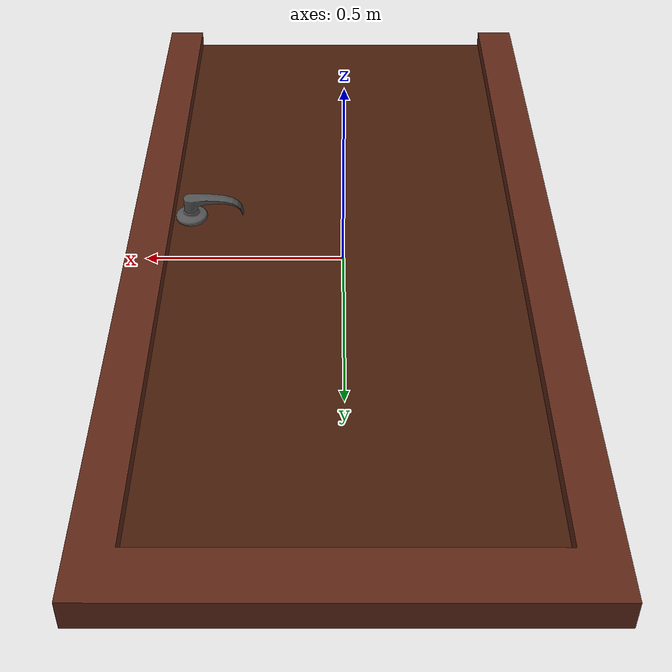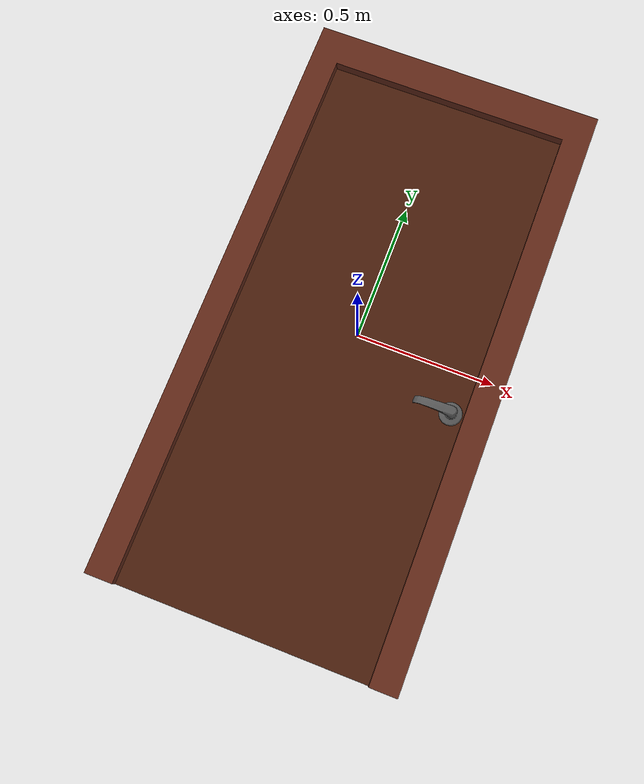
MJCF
<mujoco model="Doorway_1">
  <compiler angle="radian" />

  <default>
    <default class="/">
      <default class="__VISUAL_MJT__">
        <geom contype="0" conaffinity="0" />
      </default>
      <default class="__STRUCTURAL_MJT__">
        <geom contype="8" conaffinity="15" group="4" friction="0.9 0.9 0.001" solref="0.025" solimp="0.998 0.998" />
      </default>
      <default class="__DYNAMIC_MJT__">
        <geom conaffinity="15" group="4" friction="0.9 0.9 0.001" solref="0.025" solimp="0.998 0.998" />
      </default>
    </default>
  </default>

  <asset>
    <texture type="2d" name="TexturesCom_WoodFine0050_1_seamless_S_rich" file="TexturesCom_WoodFine0050_1_seamless_S.png" />
    <texture type="2d" name="MediumWoodSmooth" file="WoodGrains1.png" />
    <material name="material_TexturesCom_WoodFine0050_1_seamless_S_rich" class="/" texture="TexturesCom_WoodFine0050_1_seamless_S_rich" rgba="0.529412 0.307526 0.307526 1" />
    <material name="material_BlackSmoothMeta" class="/" rgba="0.323529 0.323529 0.323529 1" />
    <material name="material_MediumWoodSmooth" class="/" texture="MediumWoodSmooth" rgba="0.396226 0.230368 0.151388 1" />
    <mesh name="Doorway_1_doorway_1" class="/" content_type="model/obj" file="Doorway_1_doorway_1/Doorway_1_doorway_1.obj" />
    <mesh name="Doorway_1_doorway_door_1_0" class="/" content_type="model/obj" file="Doorway_1_doorway_door_1/Doorway_1_doorway_door_1_0.obj" />
    <mesh name="Doorway_1_doorway_door_1_1" class="/" content_type="model/obj" file="Doorway_1_doorway_door_1/Doorway_1_doorway_door_1_1.obj" />
    <mesh name="Doorway_1_doorway_handle_1" class="/" content_type="model/obj" file="Doorway_1_doorway_handle_1/Doorway_1_doorway_handle_1.obj" />
    <mesh name="Doorway_1_doorway_1_collision_1" content_type="model/obj" file="Doorway_1_doorway_1/Doorway_1_doorway_1/Doorway_1_doorway_1_collision_1.obj" />
    <mesh name="Doorway_1_doorway_1_collision_0" content_type="model/obj" file="Doorway_1_doorway_1/Doorway_1_doorway_1/Doorway_1_doorway_1_collision_0.obj" />
    <mesh name="Doorway_1_doorway_1_collision_2" content_type="model/obj" file="Doorway_1_doorway_1/Doorway_1_doorway_1/Doorway_1_doorway_1_collision_2.obj" />
    <mesh name="Doorway_1_doorway_door_1_0_collision_2" content_type="model/obj" file="Doorway_1_doorway_door_1/Doorway_1_doorway_door_1_0/Doorway_1_doorway_door_1_0_collision_2.obj" />
    <mesh name="Doorway_1_doorway_door_1_0_collision_11" content_type="model/obj" file="Doorway_1_doorway_door_1/Doorway_1_doorway_door_1_0/Doorway_1_doorway_door_1_0_collision_11.obj" />
    <mesh name="Doorway_1_doorway_door_1_0_collision_12" content_type="model/obj" file="Doorway_1_doorway_door_1/Doorway_1_doorway_door_1_0/Doorway_1_doorway_door_1_0_collision_12.obj" />
    <mesh name="Doorway_1_doorway_door_1_0_collision_18" content_type="model/obj" file="Doorway_1_doorway_door_1/Doorway_1_doorway_door_1_0/Doorway_1_doorway_door_1_0_collision_18.obj" />
    <mesh name="Doorway_1_doorway_door_1_0_collision_20" content_type="model/obj" file="Doorway_1_doorway_door_1/Doorway_1_doorway_door_1_0/Doorway_1_doorway_door_1_0_collision_20.obj" />
    <mesh name="Doorway_1_doorway_door_1_0_collision_14" content_type="model/obj" file="Doorway_1_doorway_door_1/Doorway_1_doorway_door_1_0/Doorway_1_doorway_door_1_0_collision_14.obj" />
    <mesh name="Doorway_1_doorway_door_1_0_collision_8" content_type="model/obj" file="Doorway_1_doorway_door_1/Doorway_1_doorway_door_1_0/Doorway_1_doorway_door_1_0_collision_8.obj" />
    <mesh name="Doorway_1_doorway_door_1_0_collision_16" content_type="model/obj" file="Doorway_1_doorway_door_1/Doorway_1_doorway_door_1_0/Doorway_1_doorway_door_1_0_collision_16.obj" />
    <mesh name="Doorway_1_doorway_door_1_0_collision_5" content_type="model/obj" file="Doorway_1_doorway_door_1/Doorway_1_doorway_door_1_0/Doorway_1_doorway_door_1_0_collision_5.obj" />
    <mesh name="Doorway_1_doorway_door_1_0_collision_9" content_type="model/obj" file="Doorway_1_doorway_door_1/Doorway_1_doorway_door_1_0/Doorway_1_doorway_door_1_0_collision_9.obj" />
    <mesh name="Doorway_1_doorway_door_1_0_collision_10" content_type="model/obj" file="Doorway_1_doorway_door_1/Doorway_1_doorway_door_1_0/Doorway_1_doorway_door_1_0_collision_10.obj" />
    <mesh name="Doorway_1_doorway_door_1_0_collision_15" content_type="model/obj" file="Doorway_1_doorway_door_1/Doorway_1_doorway_door_1_0/Doorway_1_doorway_door_1_0_collision_15.obj" />
    <mesh name="Doorway_1_doorway_door_1_0_collision_23" content_type="model/obj" file="Doorway_1_doorway_door_1/Doorway_1_doorway_door_1_0/Doorway_1_doorway_door_1_0_collision_23.obj" />
    <mesh name="Doorway_1_doorway_door_1_0_collision_17" content_type="model/obj" file="Doorway_1_doorway_door_1/Doorway_1_doorway_door_1_0/Doorway_1_doorway_door_1_0_collision_17.obj" />
    <mesh name="Doorway_1_doorway_door_1_0_collision_22" content_type="model/obj" file="Doorway_1_doorway_door_1/Doorway_1_doorway_door_1_0/Doorway_1_doorway_door_1_0_collision_22.obj" />
    <mesh name="Doorway_1_doorway_door_1_0_collision_19" content_type="model/obj" file="Doorway_1_doorway_door_1/Doorway_1_doorway_door_1_0/Doorway_1_doorway_door_1_0_collision_19.obj" />
    <mesh name="Doorway_1_doorway_door_1_0_collision_21" content_type="model/obj" file="Doorway_1_doorway_door_1/Doorway_1_doorway_door_1_0/Doorway_1_doorway_door_1_0_collision_21.obj" />
    <mesh name="Doorway_1_doorway_door_1_0_collision_6" content_type="model/obj" file="Doorway_1_doorway_door_1/Doorway_1_doorway_door_1_0/Doorway_1_doorway_door_1_0_collision_6.obj" />
    <mesh name="Doorway_1_doorway_door_1_0_collision_0" content_type="model/obj" file="Doorway_1_doorway_door_1/Doorway_1_doorway_door_1_0/Doorway_1_doorway_door_1_0_collision_0.obj" />
    <mesh name="Doorway_1_doorway_door_1_0_collision_3" content_type="model/obj" file="Doorway_1_doorway_door_1/Doorway_1_doorway_door_1_0/Doorway_1_doorway_door_1_0_collision_3.obj" />
    <mesh name="Doorway_1_doorway_door_1_0_collision_4" content_type="model/obj" file="Doorway_1_doorway_door_1/Doorway_1_doorway_door_1_0/Doorway_1_doorway_door_1_0_collision_4.obj" />
    <mesh name="Doorway_1_doorway_door_1_0_collision_24" content_type="model/obj" file="Doorway_1_doorway_door_1/Doorway_1_doorway_door_1_0/Doorway_1_doorway_door_1_0_collision_24.obj" />
    <mesh name="Doorway_1_doorway_door_1_0_collision_1" content_type="model/obj" file="Doorway_1_doorway_door_1/Doorway_1_doorway_door_1_0/Doorway_1_doorway_door_1_0_collision_1.obj" />
    <mesh name="Doorway_1_doorway_door_1_0_collision_7" content_type="model/obj" file="Doorway_1_doorway_door_1/Doorway_1_doorway_door_1_0/Doorway_1_doorway_door_1_0_collision_7.obj" />
    <mesh name="Doorway_1_doorway_door_1_0_collision_13" content_type="model/obj" file="Doorway_1_doorway_door_1/Doorway_1_doorway_door_1_0/Doorway_1_doorway_door_1_0_collision_13.obj" />
    <mesh name="Doorway_1_doorway_door_1_1_collision_0" content_type="model/obj" file="Doorway_1_doorway_door_1/Doorway_1_doorway_door_1_1/Doorway_1_doorway_door_1_1_collision_0.obj" />
    <mesh name="Doorway_1_doorway_handle_1_collision_7" content_type="model/obj" file="Doorway_1_doorway_handle_1/Doorway_1_doorway_handle_1/Doorway_1_doorway_handle_1_collision_7.obj" />
    <mesh name="Doorway_1_doorway_handle_1_collision_4" content_type="model/obj" file="Doorway_1_doorway_handle_1/Doorway_1_doorway_handle_1/Doorway_1_doorway_handle_1_collision_4.obj" />
    <mesh name="Doorway_1_doorway_handle_1_collision_3" content_type="model/obj" file="Doorway_1_doorway_handle_1/Doorway_1_doorway_handle_1/Doorway_1_doorway_handle_1_collision_3.obj" />
    <mesh name="Doorway_1_doorway_handle_1_collision_0" content_type="model/obj" file="Doorway_1_doorway_handle_1/Doorway_1_doorway_handle_1/Doorway_1_doorway_handle_1_collision_0.obj" />
    <mesh name="Doorway_1_doorway_handle_1_collision_6" content_type="model/obj" file="Doorway_1_doorway_handle_1/Doorway_1_doorway_handle_1/Doorway_1_doorway_handle_1_collision_6.obj" />
    <mesh name="Doorway_1_doorway_handle_1_collision_8" content_type="model/obj" file="Doorway_1_doorway_handle_1/Doorway_1_doorway_handle_1/Doorway_1_doorway_handle_1_collision_8.obj" />
    <mesh name="Doorway_1_doorway_handle_1_collision_10" content_type="model/obj" file="Doorway_1_doorway_handle_1/Doorway_1_doorway_handle_1/Doorway_1_doorway_handle_1_collision_10.obj" />
    <mesh name="Doorway_1_doorway_handle_1_collision_5" content_type="model/obj" file="Doorway_1_doorway_handle_1/Doorway_1_doorway_handle_1/Doorway_1_doorway_handle_1_collision_5.obj" />
    <mesh name="Doorway_1_doorway_handle_1_collision_2" content_type="model/obj" file="Doorway_1_doorway_handle_1/Doorway_1_doorway_handle_1/Doorway_1_doorway_handle_1_collision_2.obj" />
    <mesh name="Doorway_1_doorway_handle_1_collision_11" content_type="model/obj" file="Doorway_1_doorway_handle_1/Doorway_1_doorway_handle_1/Doorway_1_doorway_handle_1_collision_11.obj" />
    <mesh name="Doorway_1_doorway_handle_1_collision_1" content_type="model/obj" file="Doorway_1_doorway_handle_1/Doorway_1_doorway_handle_1/Doorway_1_doorway_handle_1_collision_1.obj" />
    <mesh name="Doorway_1_doorway_handle_1_collision_9" content_type="model/obj" file="Doorway_1_doorway_handle_1/Doorway_1_doorway_handle_1/Doorway_1_doorway_handle_1_collision_9.obj" />
  </asset>

  <worldbody>
    <body name="Doorway_1">
      <body name="Doorway_1_doorway_1" pos="0 -1.06572 0.00102" quat="0 0 -1 0">
        <geom name="Doorway_1_doorway_1" class="__VISUAL_MJT__" type="mesh" material="material_TexturesCom_WoodFine0050_1_seamless_S_rich" mesh="Doorway_1_doorway_1" />
        <geom name="Doorway_1_doorway_1_Doorway_1_doorway_1_MeshCollider_0" class="__DYNAMIC_MJT__" type="mesh" rgba="0.454347 0.851342 0.394783 1" mesh="Doorway_1_doorway_1_collision_1" />
        <geom name="Doorway_1_doorway_1_Doorway_1_doorway_1_MeshCollider_1" class="__DYNAMIC_MJT__" type="mesh" rgba="0.202084 0.405855 0.333252 1" mesh="Doorway_1_doorway_1_collision_0" />
        <geom name="Doorway_1_doorway_1_Doorway_1_doorway_1_MeshCollider_2" class="__DYNAMIC_MJT__" type="mesh" rgba="0.375331 0.211565 0.730763 1" mesh="Doorway_1_doorway_1_collision_2" />
        <body name="Doorway_1_doorway_door_1" pos="0.457629 1.016 0.00116137">
          <joint name="Doorway_1_doorway_door_1_joint_0" class="/" pos="0 0 0" axis="0 1 0" range="0 1.5708" damping="0.1" frictionloss="0.2" />
          <geom name="Doorway_1_doorway_door_1_0" class="__VISUAL_MJT__" type="mesh" density="400" material="material_BlackSmoothMeta" mesh="Doorway_1_doorway_door_1_0" />
          <geom name="Doorway_1_doorway_door_1_1" class="__VISUAL_MJT__" type="mesh" density="400" material="material_MediumWoodSmooth" mesh="Doorway_1_doorway_door_1_1" />
          <geom name="Doorway_1_doorway_door_1_Doorway_1_doorway_door_1_0_MeshCollider_0" class="__DYNAMIC_MJT__" type="mesh" density="400" rgba="0.648529 0.202294 0.939712 1" mesh="Doorway_1_doorway_door_1_0_collision_2" />
          <geom name="Doorway_1_doorway_door_1_Doorway_1_doorway_door_1_0_MeshCollider_1" class="__DYNAMIC_MJT__" type="mesh" density="400" rgba="0.930126 0.644503 0.0959237 1" mesh="Doorway_1_doorway_door_1_0_collision_11" />
          <geom name="Doorway_1_doorway_door_1_Doorway_1_doorway_door_1_0_MeshCollider_2" class="__DYNAMIC_MJT__" type="mesh" density="400" rgba="0.155206 0.809583 0.387815 1" mesh="Doorway_1_doorway_door_1_0_collision_12" />
          <geom name="Doorway_1_doorway_door_1_Doorway_1_doorway_door_1_0_MeshCollider_3" class="__DYNAMIC_MJT__" type="mesh" density="400" rgba="0.522695 0.00158593 0.142887 1" mesh="Doorway_1_doorway_door_1_0_collision_18" />
          <geom name="Doorway_1_doorway_door_1_Doorway_1_doorway_door_1_0_MeshCollider_4" class="__DYNAMIC_MJT__" type="mesh" density="400" rgba="0.0821487 0.656863 0.208377 1" mesh="Doorway_1_doorway_door_1_0_collision_20" />
          <geom name="Doorway_1_doorway_door_1_Doorway_1_doorway_door_1_0_MeshCollider_5" class="__DYNAMIC_MJT__" type="mesh" density="400" rgba="0.18088 0.144447 0.345986 1" mesh="Doorway_1_doorway_door_1_0_collision_14" />
          <geom name="Doorway_1_doorway_door_1_Doorway_1_doorway_door_1_0_MeshCollider_6" class="__DYNAMIC_MJT__" type="mesh" density="400" rgba="0.414477 0.905256 0.052824 1" mesh="Doorway_1_doorway_door_1_0_collision_8" />
          <geom name="Doorway_1_doorway_door_1_Doorway_1_doorway_door_1_0_MeshCollider_7" class="__DYNAMIC_MJT__" type="mesh" density="400" rgba="0.71759 0.554128 0.706758 1" mesh="Doorway_1_doorway_door_1_0_collision_16" />
          <geom name="Doorway_1_doorway_door_1_Doorway_1_doorway_door_1_0_MeshCollider_8" class="__DYNAMIC_MJT__" type="mesh" density="400" rgba="0.417041 0.930151 0.939391 1" mesh="Doorway_1_doorway_door_1_0_collision_5" />
          <geom name="Doorway_1_doorway_door_1_Doorway_1_doorway_door_1_0_MeshCollider_9" class="__DYNAMIC_MJT__" type="mesh" density="400" rgba="0.0555079 0.0837699 0.834545 1" mesh="Doorway_1_doorway_door_1_0_collision_9" />
          <geom name="Doorway_1_doorway_door_1_Doorway_1_doorway_door_1_0_MeshCollider_10" class="__DYNAMIC_MJT__" type="mesh" density="400" rgba="0.556526 0.658584 0.0593275 1" mesh="Doorway_1_doorway_door_1_0_collision_10" />
          <geom name="Doorway_1_doorway_door_1_Doorway_1_doorway_door_1_0_MeshCollider_11" class="__DYNAMIC_MJT__" type="mesh" density="400" rgba="0.955395 0.137254 0.527344 1" mesh="Doorway_1_doorway_door_1_0_collision_15" />
          <geom name="Doorway_1_doorway_door_1_Doorway_1_doorway_door_1_0_MeshCollider_12" class="__DYNAMIC_MJT__" type="mesh" density="400" rgba="0.630686 0.496505 0.723266 1" mesh="Doorway_1_doorway_door_1_0_collision_23" />
          <geom name="Doorway_1_doorway_door_1_Doorway_1_doorway_door_1_0_MeshCollider_13" class="__DYNAMIC_MJT__" type="mesh" density="400" rgba="0.652747 0.6199 0.0718684 1" mesh="Doorway_1_doorway_door_1_0_collision_17" />
          <geom name="Doorway_1_doorway_door_1_Doorway_1_doorway_door_1_0_MeshCollider_14" class="__DYNAMIC_MJT__" type="mesh" density="400" rgba="0.904269 0.841919 0.235622 1" mesh="Doorway_1_doorway_door_1_0_collision_22" />
          <geom name="Doorway_1_doorway_door_1_Doorway_1_doorway_door_1_0_MeshCollider_15" class="__DYNAMIC_MJT__" type="mesh" density="400" rgba="0.233619 0.80766 0.863779 1" mesh="Doorway_1_doorway_door_1_0_collision_19" />
          <geom name="Doorway_1_doorway_door_1_Doorway_1_doorway_door_1_0_MeshCollider_16" class="__DYNAMIC_MJT__" type="mesh" density="400" rgba="0.756694 0.225269 0.20084 1" mesh="Doorway_1_doorway_door_1_0_collision_21" />
          <geom name="Doorway_1_doorway_door_1_Doorway_1_doorway_door_1_0_MeshCollider_17" class="__DYNAMIC_MJT__" type="mesh" density="400" rgba="0.032232 0.963325 0.127332 1" mesh="Doorway_1_doorway_door_1_0_collision_6" />
          <geom name="Doorway_1_doorway_door_1_Doorway_1_doorway_door_1_0_MeshCollider_18" class="__DYNAMIC_MJT__" type="mesh" density="400" rgba="0.415708 0.803088 0.280024 1" mesh="Doorway_1_doorway_door_1_0_collision_0" />
          <geom name="Doorway_1_doorway_door_1_Doorway_1_doorway_door_1_0_MeshCollider_19" class="__DYNAMIC_MJT__" type="mesh" density="400" rgba="0.679179 0.663109 0.517114 1" mesh="Doorway_1_doorway_door_1_0_collision_3" />
          <geom name="Doorway_1_doorway_door_1_Doorway_1_doorway_door_1_0_MeshCollider_20" class="__DYNAMIC_MJT__" type="mesh" density="400" rgba="0.492665 0.3828 0.14334 1" mesh="Doorway_1_doorway_door_1_0_collision_4" />
          <geom name="Doorway_1_doorway_door_1_Doorway_1_doorway_door_1_0_MeshCollider_21" class="__DYNAMIC_MJT__" type="mesh" density="400" rgba="0.674845 0.437417 0.780639 1" mesh="Doorway_1_doorway_door_1_0_collision_24" />
          <geom name="Doorway_1_doorway_door_1_Doorway_1_doorway_door_1_0_MeshCollider_22" class="__DYNAMIC_MJT__" type="mesh" density="400" rgba="0.585471 0.776597 0.377185 1" mesh="Doorway_1_doorway_door_1_0_collision_1" />
          <geom name="Doorway_1_doorway_door_1_Doorway_1_doorway_door_1_0_MeshCollider_23" class="__DYNAMIC_MJT__" type="mesh" density="400" rgba="0.073741 0.722184 0.925191 1" mesh="Doorway_1_doorway_door_1_0_collision_7" />
          <geom name="Doorway_1_doorway_door_1_Doorway_1_doorway_door_1_0_MeshCollider_24" class="__DYNAMIC_MJT__" type="mesh" density="400" rgba="0.882213 0.0311147 0.971173 1" mesh="Doorway_1_doorway_door_1_0_collision_13" />
          <geom name="Doorway_1_doorway_door_1_Doorway_1_doorway_door_1_1_MeshCollider_0" class="__DYNAMIC_MJT__" type="mesh" density="400" rgba="0.225484 0.57759 0.0941078 1" mesh="Doorway_1_doorway_door_1_1_collision_0" />
          <body name="Doorway_1_doorway_handle_1" pos="-0.854 -0.100915 0">
            <joint name="Doorway_1_doorway_handle_1_joint_0" class="/" pos="0 0 0" axis="0 0 1" stiffness="2" range="-1.5708 0" armature="0.01" damping="0.01" frictionloss="0.5" />
            <geom name="Doorway_1_doorway_handle_1" class="__VISUAL_MJT__" type="mesh" material="material_BlackSmoothMeta" mesh="Doorway_1_doorway_handle_1" />
            <geom name="Doorway_1_doorway_handle_1_Doorway_1_doorway_handle_1_MeshCollider_0" class="__DYNAMIC_MJT__" type="mesh" rgba="0.562059 0.800855 0.0141765 1" mesh="Doorway_1_doorway_handle_1_collision_7" />
            <geom name="Doorway_1_doorway_handle_1_Doorway_1_doorway_handle_1_MeshCollider_1" class="__DYNAMIC_MJT__" type="mesh" rgba="0.0695057 0.51781 0.729565 1" mesh="Doorway_1_doorway_handle_1_collision_4" />
            <geom name="Doorway_1_doorway_handle_1_Doorway_1_doorway_handle_1_MeshCollider_2" class="__DYNAMIC_MJT__" type="mesh" rgba="0.38647 0.730135 0.994079 1" mesh="Doorway_1_doorway_handle_1_collision_3" />
            <geom name="Doorway_1_doorway_handle_1_Doorway_1_doorway_handle_1_MeshCollider_3" class="__DYNAMIC_MJT__" type="mesh" rgba="0.276234 0.550221 0.933302 1" mesh="Doorway_1_doorway_handle_1_collision_0" />
            <geom name="Doorway_1_doorway_handle_1_Doorway_1_doorway_handle_1_MeshCollider_4" class="__DYNAMIC_MJT__" type="mesh" rgba="0.34604 0.146677 0.143438 1" mesh="Doorway_1_doorway_handle_1_collision_6" />
            <geom name="Doorway_1_doorway_handle_1_Doorway_1_doorway_handle_1_MeshCollider_5" class="__DYNAMIC_MJT__" type="mesh" rgba="0.452668 0.35044 0.72324 1" mesh="Doorway_1_doorway_handle_1_collision_8" />
            <geom name="Doorway_1_doorway_handle_1_Doorway_1_doorway_handle_1_MeshCollider_6" class="__DYNAMIC_MJT__" type="mesh" rgba="0.370397 0.40081 0.476497 1" mesh="Doorway_1_doorway_handle_1_collision_10" />
            <geom name="Doorway_1_doorway_handle_1_Doorway_1_doorway_handle_1_MeshCollider_7" class="__DYNAMIC_MJT__" type="mesh" rgba="0.954892 0.638711 0.983102 1" mesh="Doorway_1_doorway_handle_1_collision_5" />
            <geom name="Doorway_1_doorway_handle_1_Doorway_1_doorway_handle_1_MeshCollider_8" class="__DYNAMIC_MJT__" type="mesh" rgba="0.679595 0.488057 0.0427216 1" mesh="Doorway_1_doorway_handle_1_collision_2" />
            <geom name="Doorway_1_doorway_handle_1_Doorway_1_doorway_handle_1_MeshCollider_9" class="__DYNAMIC_MJT__" type="mesh" rgba="0.854284 0.582509 0.0338769 1" mesh="Doorway_1_doorway_handle_1_collision_11" />
            <geom name="Doorway_1_doorway_handle_1_Doorway_1_doorway_handle_1_MeshCollider_10" class="__DYNAMIC_MJT__" type="mesh" rgba="0.559371 0.737368 0.32398 1" mesh="Doorway_1_doorway_handle_1_collision_1" />
            <geom name="Doorway_1_doorway_handle_1_Doorway_1_doorway_handle_1_MeshCollider_11" class="__DYNAMIC_MJT__" type="mesh" rgba="0.178311 0.255505 0.0784604 1" mesh="Doorway_1_doorway_handle_1_collision_9" />
          </body>
        </body>
      </body>
    </body>
  </worldbody>

  <contact>
    <exclude name="//unnamed_contact_0" body1="Doorway_1_doorway_1" body2="Doorway_1_doorway_door_1" />
    <exclude body1="Doorway_1_doorway_1" body2="Doorway_1_doorway_door_1" />
    <exclude body1="Doorway_1_doorway_1" body2="Doorway_1_doorway_handle_1" />
    <exclude name="//unnamed_contact_1" body1="Doorway_1_doorway_door_1" body2="Doorway_1_doorway_handle_1" />
    <exclude body1="Doorway_1_doorway_door_1" body2="Doorway_1_doorway_handle_1" />
  </contact>
</mujoco>
